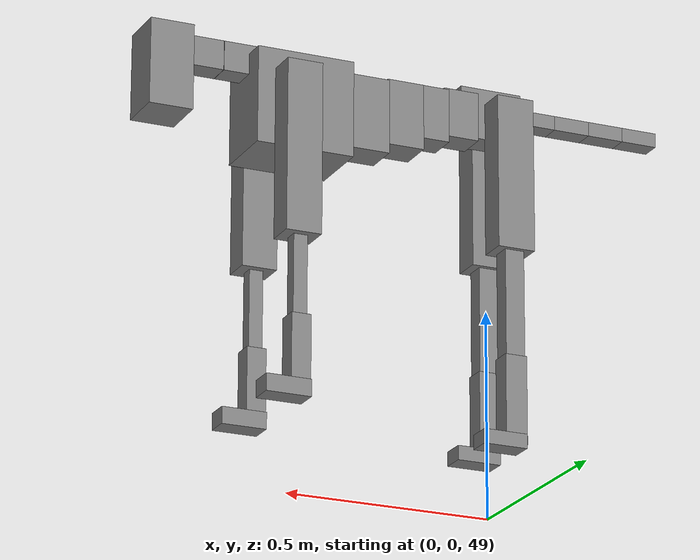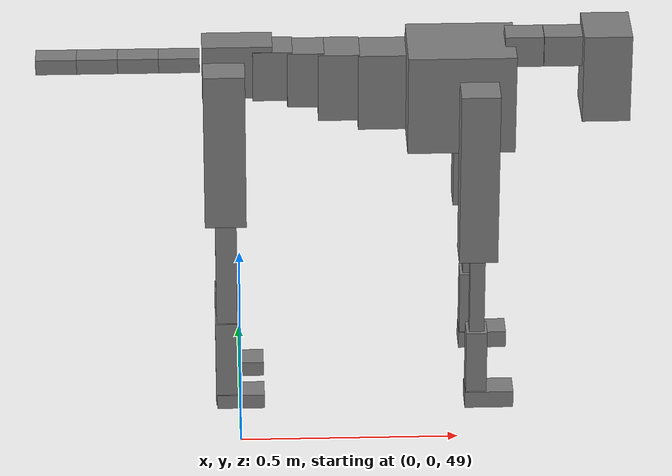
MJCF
<mujoco model="dog">

    <default>
        <joint armature="0.02" stiffness="1" damping="0.2" limited="true"/>
        <geom condim="3" friction="1 0.05 0.05" margin="0.01"/>
        <motor ctrllimited="true" ctrlrange="-1.0 1.0" forcelimited="true" gear="50"/>
    </default>

    <compiler inertiafromgeom="true" angle="radian"/>

    <option timestep="0.016" iterations="50" tolerance="1e-10" solver="Newton" jacobian="dense" cone="pyramidal"/>

    <size nconmax="20000" njmax="60000" nstack="5000000"/>
    <visual>
        <map force="0.1" zfar="30"/>
        <rgba haze="0.15 0.25 0.35 1"/>
        <quality shadowsize="2048"/>
        <global offwidth="800" offheight="800"/>
    </visual>

    <asset>
        <texture type="skybox" builtin="gradient" rgb1="0.3 0.5 0.7" rgb2="0 0 0" width="512" height="512"/>
        <texture name="texplane" type="2d" builtin="checker" rgb1=".2 .3 .4" rgb2=".1 0.15 0.2" width="512" height="512"
                 mark="cross" markrgb=".8 .8 .8"/>
        <texture name="texgeom" type="cube" builtin="flat" mark="cross" width="127" height="1278" rgb1="0.8 0.6 0.4"
                 rgb2="0.8 0.6 0.4" markrgb="1 1 1" random="0.01"/>

        <material name="matplane" reflectance="0.3" texture="texplane" texrepeat="1 1" texuniform="true"/>
        <material name="matgeom" texture="texgeom" texuniform="true" rgba="0.8 0.6 .4 1"/>
    </asset>

    <worldbody>
        <geom name="floor" pos="0 0 0" size="0 0 .25" type="plane" material="matplane" condim="3"/>

        <light directional="false" diffuse=".2 .2 .2" specular="0 0 0" pos="0 0 5" dir="0 0 -1" castshadow="false"/>
        <light mode="targetbodycom" target="torso" directional="false" diffuse=".8 .8 .8" specular="0.3 0.3 0.3"
               pos="0 0 4.0" dir="0 0 -1"/>

        <body name="root" pos="0 0 50">
            <freejoint name="root_1"/>
            <geom type="box" pos="0 0 -0.02" size="0.0774  0.0358  0.063" density="2030"/>

            <body name="spine1" pos="0.054 0 0">
                <joint name="spine1_y" axis="0 1 0" range="0 0.7" limited="true"/>
                <geom type="box" pos="0.02375 0 -0.03" size="0.04375  0.0375  0.05985" density="2030"/>

                <body name="spine2" pos="0.0612 0 0">
                    <joint name="spine2_y" axis="0 1 0" range="-0.15 0.15" limited="true"/>
                    <geom type="box" pos="0.03555  0  -0.04" size="0.04055  0.039  0.06615" density="2030"/>

                    <body name="spine3" pos="0.0730 0 0">
                        <joint name="spine3_y" axis="0 1 0" range="-0.15 0.15" limited="true"/>
                        <geom type="box" pos="0.03555  0  -0.057" size="0.04555  0.0445  0.081" density="2030"/>

                        <body name="spine4" pos="0.0780 0 0">
                            <joint name="spine4_y" axis="0 1 0" range="-0.15 0.15" limited="true"/>
                            <geom type="box" pos="0.05265  0  -0.07" size="0.05265  0.045  0.09135" density="2030"/>

                            <body name="torso" pos="0.1082 0 0">
                                <joint name="torso_y" axis="0 1 0" range="-0.15 0.15" limited="true"/>
                                <geom type="box" pos="0.11925  0  -0.085" size="0.11925  0.085  0.11745"
                                      density="2030"/>

                                <body name="neck1" pos="0.2160  0   0.0180">
                                    <joint name="neck1_y" axis="0 1 0" range="-1.2  -1" limited="true"/>
                                    <geom type="box" pos="0.0423  0  0" size="0.0423  0.03  0.036" density="2325"/>

                                    <body name="neck2" pos="0.0853  0  0">
                                        <joint name="neck2_y" axis="0 1 0" range="0.1  0" limited="true"/>
                                        <geom type="box" pos="0.0423  0  0" size="0.0423  0.03  0.036" density="2325"/>

                                        <body name="head" pos="0.0853  0  0">
                                            <joint name="head_y" axis="0 1 0" range="-0.3  -0.2" limited="true"/>
                                            <geom type="box" pos="0.0531  0  -0.055" size="0.0531  0.06  0.1044"
                                                  density="4030"/>

                                        </body>
                                    </body>
                                </body>

                                <body name="front_shoulder" pos="0.156  0   -0.0480">
                                    <joint name="front_shoulder_y" axis="0 1 0" range="-1 1.5" limited="true"/>
                                    <geom type="box" pos="0 0.13 -0.1814" size="0.0431  0.0368  0.2081" density="1158"/>
                                    <geom type="box" pos="0 -0.13 -0.1814" size="0.0431  0.0368  0.2081"
                                          density="1158"/>

                                    <body name="front_elbow" pos="0  0  -0.3629">
                                        <joint name="front_elbow_y" axis="0 1 0" range="-2 0" limited="true"/>
                                        <geom type="box" pos="0 0.13 -0.1151" size="0.0168  0.0171  0.1151"
                                              density="1081"/>
                                        <geom type="box" pos="0 -0.13 -0.1151" size="0.0168  0.0171  0.1151"
                                              density="1081"/>

                                        <body name="front_wrist" pos="0  0  -0.2301">
                                            <joint name="front_wrist_y" axis="0 1 0" range="-0.2 0" limited="true"/>
                                            <geom type="box" pos="0 0.13 -0.0774" size="0.0236  0.0262  0.0906"
                                                  density="1664"/>
                                            <geom type="box" pos="0 -0.13 -0.0774" size="0.0236  0.0262  0.0906"
                                                  density="1664"/>

                                            <body name="front_finger_end" pos="0  0  -0.1548">
                                                <joint name="front_finger_y" axis="0 1 0" range="-0.4 1"
                                                       limited="true"/>
                                                <geom type="box" pos="0.0298  0.13  -0.0054"
                                                      size="0.0547  0.0298  0.0204" density="1515"/>
                                                <geom type="box" pos="0.0298  -0.13  -0.0054"
                                                      size="0.0547  0.0298  0.0204" density="1515"/>

                                            </body>

                                        </body>
                                    </body>
                                </body>

                            </body>
                        </body>
                    </body>
                </body>
            </body>

            <body name="back_hip" pos="-0.03 0 -0.018">
                <joint name="back_hip_y" axis="0 1 0" range="-1.5 0.3" limited="true"/>
                <geom type="box" pos="0 0.07 -0.1655" size="0.0461  0.0361  0.1883" density="1154"/>
                <geom type="box" pos="0 -0.07 -0.1655" size="0.0461  0.0361  0.1883" density="1154"/>

                <body name="back_knee" pos="0  0  -0.3310">
                    <joint name="back_knee_y" axis="0 1 0" range="0 2.8" limited="true"/>
                    <geom type="box" pos="0 0.07 -0.1456" size="0.0237  0.0234  0.1612" density="1227"/>
                    <geom type="box" pos="0 -0.07 -0.1456" size="0.0237  0.0234  0.1612" density="1227"/>

                    <body name="back_ankle" pos="0  0  -0.2913">
                        <joint name="back_ankle_y" axis="0 1 0" range="-2.2 0" limited="true"/>
                        <geom type="box" pos="0 0.07 -0.0958" size="0.0267  0.0267  0.1071" density="1284"/>
                        <geom type="box" pos="0 -0.07 -0.0958" size="0.0267  0.0267  0.1071" density="1284"/>

                        <body name="back_toe_end" pos="0  0  -0.1916">
                            <joint name="back_toe_y" axis="0 1 0" range="-0.4 1" limited="true"/>
                            <geom type="box" pos="0.0293  0.07  -0.0024" size="0.0537  0.0293  0.0174" density="1515"/>
                            <geom type="box" pos="0.0293  -0.07  -0.0024" size="0.0537  0.0293  0.0174" density="1515"/>

                        </body>
                    </body>
                </body>
            </body>

            <body name="tail1" pos="-0.074 0 -0.006">
                <joint name="tail1_y" axis="0 1 0" range="-0.2 0.2" limited="true"/>
                <geom type="box" pos="-0.0536  0  0" size="0.045  0.025  0.0175" density="1587"/>

                <body name="tail2" pos="-0.09 0 0">
                    <joint name="tail2_y" axis="0 1 0" range="-0.2 0.2" limited="true"/>
                    <geom type="box" pos="-0.0536  0  0" size="0.045  0.025  0.0175" density="1587"/>

                    <body name="tail3" pos="-0.09 0 0">
                        <joint name="tail3_y" axis="0 1 0" range="-0.2 0.2" limited="true"/>
                        <geom type="box" pos="-0.0536  0  0" size="0.045  0.025  0.0175" density="1587"/>

                        <body name="tail4" pos="-0.09 0 0">
                            <joint name="tail4_y" axis="0 1 0" range="-0.2 0.2" limited="true"/>
                            <geom type="box" pos="-0.0536  0  0" size="0.045  0.025  0.0175" density="1587"/>

                        </body>
                    </body>
                </body>
            </body>
        </body>
    </worldbody>

    <actuator>
        <motor joint="spine1_y" forcerange="-150 150     "/>
        <motor joint="spine2_y" forcerange="-150 150     "/>
        <motor joint="spine3_y" forcerange="-150 150     "/>
        <motor joint="spine4_y" forcerange="-150 150     "/>
        <motor joint="torso_y" forcerange="-150 150     "/>
        <motor joint="neck1_y" forcerange="-100 100       "/>
        <motor joint="neck2_y" forcerange="-100 100       "/>
        <motor joint="head_y" forcerange="-150 150       "/>
        <motor joint="front_shoulder_y" forcerange="-198.46 146.88"/>
        <motor joint="front_elbow_y" forcerange="-107.98 116.64"/>
        <motor joint="front_wrist_y" forcerange="-148.41 61.12"/>
        <motor joint="front_finger_y" forcerange="-34.90 84.11"/>
        <motor joint="back_hip_y" forcerange="-358.97 322.66"/>
        <motor joint="back_knee_y" forcerange="-296.31 244.09"/>
        <motor joint="back_angle_y" forcerange="-125.26 201.62"/>
        <motor joint="back_toe_y" forcerange="-119.45 34.76"/>
        <motor joint="tail1_y" forcerange="-50 50     "/>
        <motor joint="tail2_y" forcerange="-50 50     "/>
        <motor joint="tail3_y" forcerange="-50 50     "/>
        <motor joint="tail4_y" forcerange="-50 50     "/>
    </actuator>
</mujoco>
